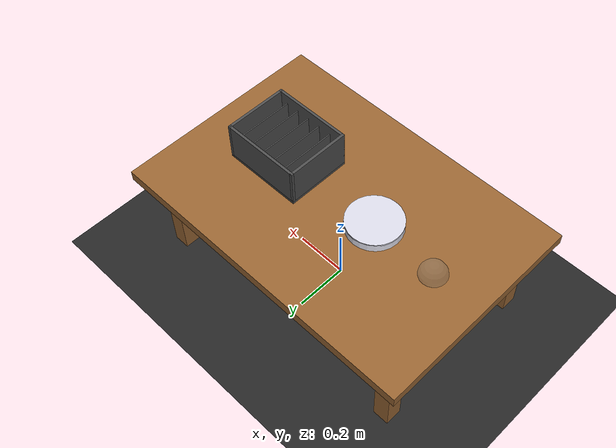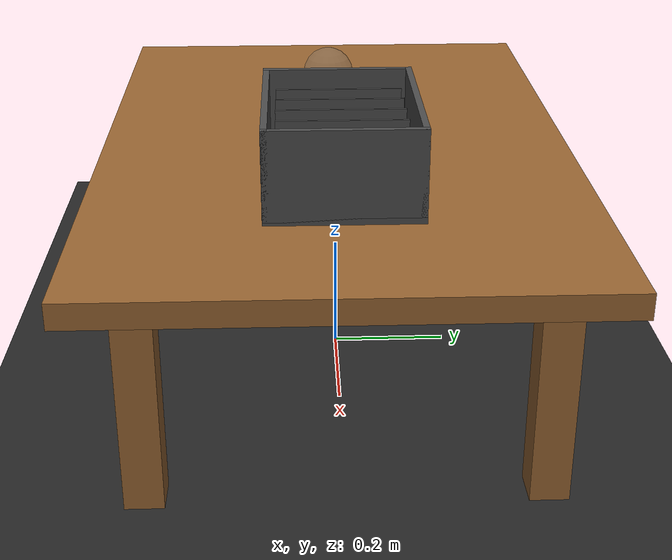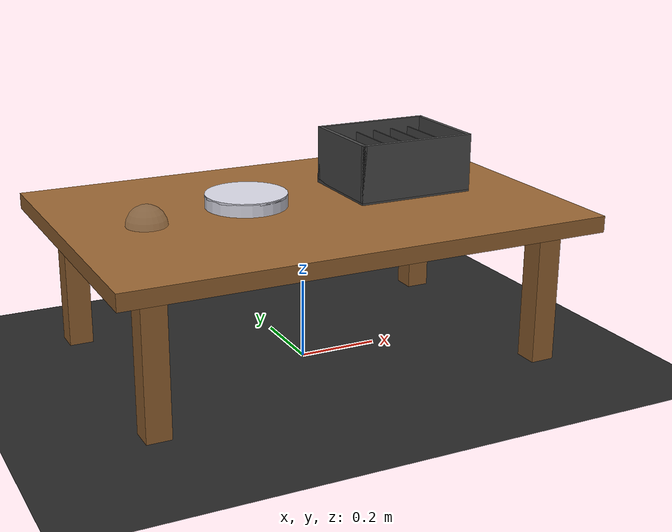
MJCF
<?xml version="1.0" encoding="utf-8"?>
<!--
  Place plate into dishwasher rack

  Parameter Space Definition:
  - plate: x, y position + 1 DOF rotation (yaw)
  - rack: fixed position

  Range specification: 10cm variation for x,y
-->
<mujoco model="dishwasher_plate_task">
  <compiler angle="radian" meshdir="meshes/" autolimits="true"/>

  <option timestep="0.002" gravity="0 0 -9.81" integrator="implicitfast">
    <flag contact="enable"/>
  </option>

  <default>
    <default class="visual">
      <geom group="2" type="mesh" contype="0" conaffinity="0"/>
    </default>
    <default class="collision">
      <geom group="3" type="mesh"/>
    </default>
    <default class="plate">
      <geom type="cylinder" rgba="0.9 0.9 0.95 1" friction="0.8 0.02 0.01"/>
    </default>
    <default class="rack">
      <geom type="box" rgba="0.3 0.3 0.3 1" friction="0.6 0.01 0.01"/>
    </default>
    <default class="table">
      <geom type="box" rgba="0.6 0.4 0.2 1"/>
    </default>
  </default>

  <asset>
    <!-- Textures for visual variety -->
    <texture name="grid" type="2d" builtin="checker" rgb1="0.1 0.1 0.1" rgb2="0.2 0.2 0.2" width="512" height="512"/>
    <material name="grid" texture="grid" texrepeat="8 8" reflectance="0.1"/>
    <texture name="wood" type="2d" builtin="flat" rgb1="0.6 0.4 0.2" rgb2="0.5 0.35 0.15" width="256" height="256"/>
    <material name="wood" texture="wood" reflectance="0.05"/>
  </asset>

  <worldbody>
    <!-- Ground plane -->
    <geom name="floor" type="plane" size="2 2 0.1" material="grid" pos="0 0 0"/>

    <!-- Ambient lighting -->
    <light name="light0" pos="0 0 3" dir="0 0 -1" diffuse="0.8 0.8 0.8"/>
    <light name="light1" pos="1 1 2" dir="-0.5 -0.5 -1" diffuse="0.4 0.4 0.4"/>

    <!-- Table surface -->
    <body name="table" pos="0 0 0.38">
      <geom name="table_top" class="table" size="0.6 0.4 0.02" material="wood"/>
      <geom name="table_leg1" class="table" pos="-0.5 -0.3 -0.19" size="0.03 0.03 0.17"/>
      <geom name="table_leg2" class="table" pos="0.5 -0.3 -0.19" size="0.03 0.03 0.17"/>
      <geom name="table_leg3" class="table" pos="-0.5 0.3 -0.19" size="0.03 0.03 0.17"/>
      <geom name="table_leg4" class="table" pos="0.5 0.3 -0.19" size="0.03 0.03 0.17"/>
    </body>

    <!-- ========== DISHWASHER RACK (FIXED) ========== -->
    <!-- Position: Right side of table, fixed location -->
    <body name="dishwasher_rack" pos="0.25 0 0.42">
      <!-- Rack base -->
      <geom name="rack_base" class="rack" size="0.15 0.12 0.005" pos="0 0 0"/>

      <!-- Rack slots (vertical dividers for plates) -->
      <!-- 5 slots, spaced 5cm apart -->
      <geom name="slot_0" class="rack" size="0.002 0.10 0.06" pos="-0.10 0 0.06"/>
      <geom name="slot_1" class="rack" size="0.002 0.10 0.06" pos="-0.05 0 0.06"/>
      <geom name="slot_2" class="rack" size="0.002 0.10 0.06" pos="0.00 0 0.06"/>
      <geom name="slot_3" class="rack" size="0.002 0.10 0.06" pos="0.05 0 0.06"/>
      <geom name="slot_4" class="rack" size="0.002 0.10 0.06" pos="0.10 0 0.06"/>

      <!-- Rack side walls -->
      <geom name="rack_wall_left" class="rack" size="0.005 0.12 0.07" pos="-0.145 0 0.07"/>
      <geom name="rack_wall_right" class="rack" size="0.005 0.12 0.07" pos="0.145 0 0.07"/>
      <geom name="rack_wall_front" class="rack" size="0.15 0.005 0.07" pos="0 -0.115 0.07"/>
      <geom name="rack_wall_back" class="rack" size="0.15 0.005 0.07" pos="0 0.115 0.07"/>

      <!-- Visual marker for target slot (slot 2 = center) -->
      <site name="target_slot" pos="0.025 0 0.005" size="0.02 0.08 0.001" rgba="0 1 0 0.3" type="box"/>
    </body>

    <!-- ========== PLATE (PARAMETERIZABLE) ========== -->
    <body name="plate" pos="-0.15 0 0.43">
      <freejoint name="plate_joint"/>
      <geom name="plate_body" class="plate" size="0.10 0.015" mass="0.3"/>
      <!-- Plate rim (slightly raised edge) -->
      <geom name="plate_rim" type="cylinder" size="0.10 0.003" pos="0 0 0.015"
            rgba="0.85 0.85 0.9 1" mass="0.05"/>
      <!-- Center site for tracking -->
      <site name="plate_center" pos="0 0 0" size="0.01" rgba="1 0 0 1"/>
      <!-- Edge sites for grasp points -->
      <site name="plate_grasp_1" pos="0.09 0 0.01" size="0.008" rgba="0 0 1 0.5"/>
      <site name="plate_grasp_2" pos="-0.09 0 0.01" size="0.008" rgba="0 0 1 0.5"/>
      <site name="plate_grasp_3" pos="0 0.09 0.01" size="0.008" rgba="0 0 1 0.5"/>
      <site name="plate_grasp_4" pos="0 -0.09 0.01" size="0.008" rgba="0 0 1 0.5"/>
    </body>

    <!-- ========== ROBOT PLACEHOLDER ========== -->
    <!-- Include your robot here (xArm7, UR5, Franka, etc.) -->
    <!-- Example mounting position -->
    <body name="robot_mount" pos="-0.4 0 0.40">
      <site name="robot_base" size="0.05" rgba="0.5 0.5 0.5 0.3"/>
    </body>

  </worldbody>

  <!-- Sensors for state observation -->
  <sensor>
    <framepos name="plate_pos" objtype="site" objname="plate_center"/>
    <framequat name="plate_quat" objtype="site" objname="plate_center"/>
    <framelinvel name="plate_linvel" objtype="site" objname="plate_center"/>
    <frameangvel name="plate_angvel" objtype="site" objname="plate_center"/>
  </sensor>

  <!-- Keyframes for demonstration generation -->
  <keyframe>
    <!-- Initial state: plate flat on table, left side -->
    <key name="initial"
         qpos="-0.15 0 0.43 1 0 0 0"
         ctrl=""/>

    <!-- Grasped state: plate lifted -->
    <key name="grasped"
         qpos="-0.15 0 0.55 1 0 0 0"
         ctrl=""/>

    <!-- Pre-insert: plate rotated 90deg, above rack -->
    <key name="pre_insert"
         qpos="0.25 0 0.55 0.707 0 0.707 0"
         ctrl=""/>

    <!-- Inserted: plate in slot (rotated, lowered) -->
    <key name="inserted"
         qpos="0.275 0 0.48 0.707 0 0.707 0"
         ctrl=""/>
  </keyframe>

</mujoco>
